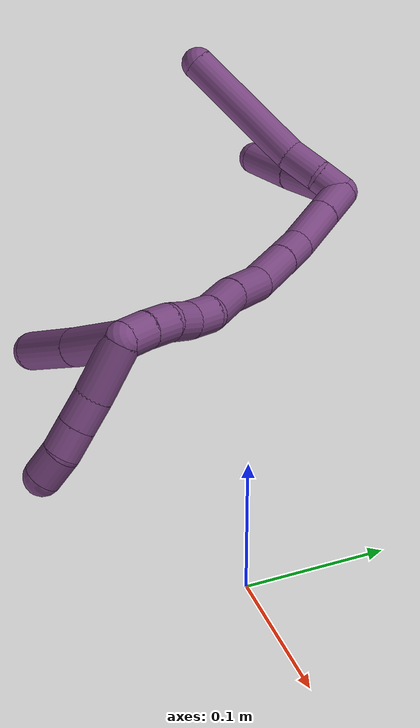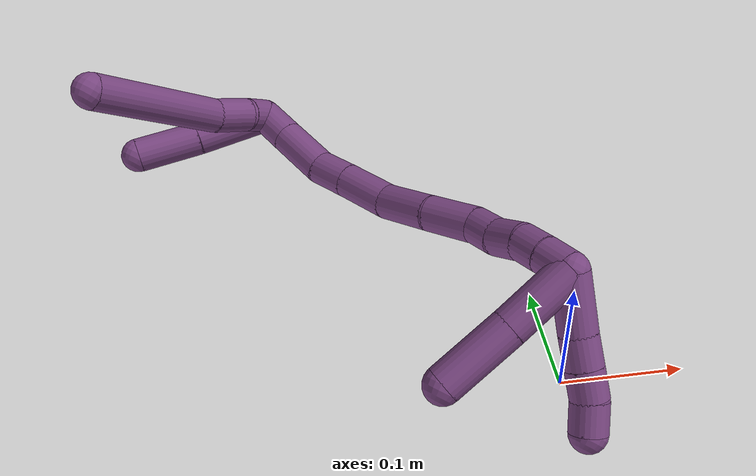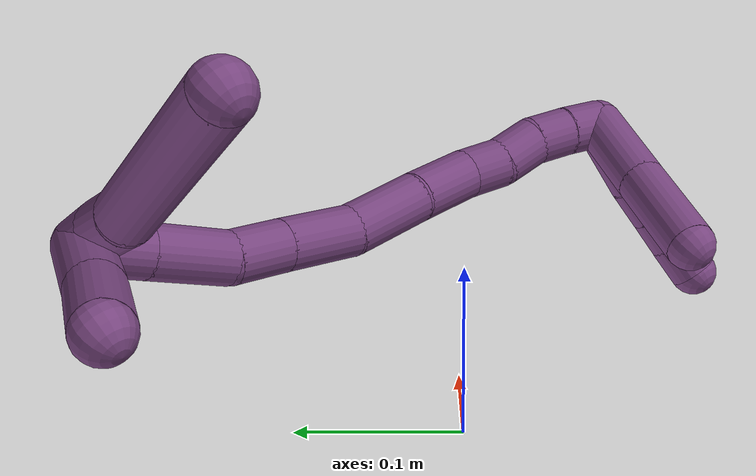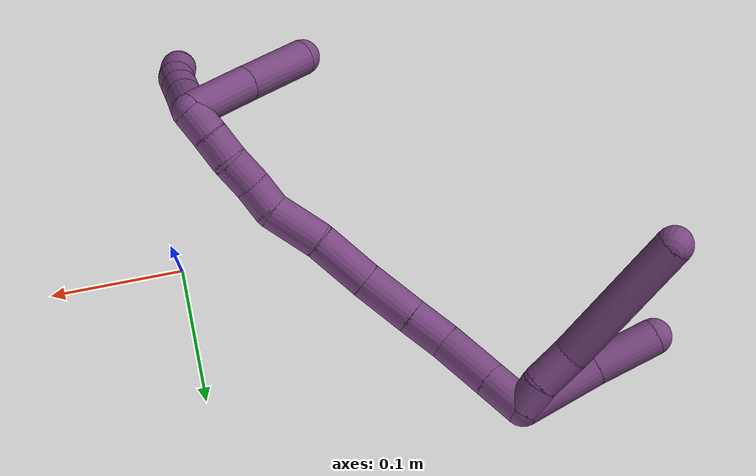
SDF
<sdf version="1.7">
 <world name="default">
  <model name="20">
   <static>0</static>
   <link name="20">
    <collision name="collision-cylinder-e_1_2_8">
     <pose>-0.007786 -0.005163 -0.004439 2.28092 -0.852278 -1.55969</pose>
     <geometry><cylinder><radius>0.0125</radius><length>0.020687</length></cylinder></geometry>
     <surface>
      <friction><ode><mu>1.16</mu><mu2>1.16</mu2><slip1>0</slip1><slip2>0</slip2></ode></friction>
      <contact><ode><kp>1e+06</kp><kd>1</kd><max_vel>0</max_vel><min_depth>0.001</min_depth></ode></contact>
     </surface>
    </collision>
    <visual name="visual-cylinder-e_1_2_8">
     <pose>-0.007786 -0.005163 -0.004439 2.28092 -0.852278 -1.55969</pose>
     <geometry><cylinder><radius>0.0125</radius><length>0.020687</length></cylinder></geometry>
     <material><ambient>0.478431 0.278431 0.509804 1</ambient></material>
    </visual>
    <collision name="collision-cylinder-e_2_8_9">
     <pose>-0.026962 -0.014301 -0.016364 2.65346 -0.931016 -2.2211</pose>
     <geometry><cylinder><radius>0.0125</radius><length>0.028396</length></cylinder></geometry>
     <surface>
      <friction><ode><mu>1.16</mu><mu2>1.16</mu2><slip1>0</slip1><slip2>0</slip2></ode></friction>
      <contact><ode><kp>1e+06</kp><kd>1</kd><max_vel>0</max_vel><min_depth>0.001</min_depth></ode></contact>
     </surface>
    </collision>
    <visual name="visual-cylinder-e_2_8_9">
     <pose>-0.026962 -0.014301 -0.016364 2.65346 -0.931016 -2.2211</pose>
     <geometry><cylinder><radius>0.0125</radius><length>0.028396</length></cylinder></geometry>
     <material><ambient>0.478431 0.278431 0.509804 1</ambient></material>
    </visual>
    <collision name="collision-cylinder-e_3_9_6">
     <pose>-0.08106 -0.038549 -0.041491 2.28689 -1.00916 -1.76243</pose>
     <geometry><cylinder><radius>0.0125</radius><length>0.100918</length></cylinder></geometry>
     <surface>
      <friction><ode><mu>1.16</mu><mu2>1.16</mu2><slip1>0</slip1><slip2>0</slip2></ode></friction>
      <contact><ode><kp>1e+06</kp><kd>1</kd><max_vel>0</max_vel><min_depth>0.001</min_depth></ode></contact>
     </surface>
    </collision>
    <visual name="visual-cylinder-e_3_9_6">
     <pose>-0.08106 -0.038549 -0.041491 2.28689 -1.00916 -1.76243</pose>
     <geometry><cylinder><radius>0.0125</radius><length>0.100918</length></cylinder></geometry>
     <material><ambient>0.478431 0.278431 0.509804 1</ambient></material>
    </visual>
    <collision name="collision-cylinder-e_1_2_10">
     <pose>-0.017469 0.003583 -0.020643 -2.96975 -0.695021 2.67466</pose>
     <geometry><cylinder><radius>0.0125</radius><length>0.054558</length></cylinder></geometry>
     <surface>
      <friction><ode><mu>1.16</mu><mu2>1.16</mu2><slip1>0</slip1><slip2>0</slip2></ode></friction>
      <contact><ode><kp>1e+06</kp><kd>1</kd><max_vel>0</max_vel><min_depth>0.001</min_depth></ode></contact>
     </surface>
    </collision>
    <visual name="visual-cylinder-e_1_2_10">
     <pose>-0.017469 0.003583 -0.020643 -2.96975 -0.695021 2.67466</pose>
     <geometry><cylinder><radius>0.0125</radius><length>0.054558</length></cylinder></geometry>
     <material><ambient>0.478431 0.278431 0.509804 1</ambient></material>
    </visual>
    <collision name="collision-cylinder-e_2_10_5">
     <pose>-0.050211 0.010739 -0.057724 -2.92752 -0.737117 2.5989</pose>
     <geometry><cylinder><radius>0.0125</radius><length>0.045442</length></cylinder></geometry>
     <surface>
      <friction><ode><mu>1.16</mu><mu2>1.16</mu2><slip1>0</slip1><slip2>0</slip2></ode></friction>
      <contact><ode><kp>1e+06</kp><kd>1</kd><max_vel>0</max_vel><min_depth>0.001</min_depth></ode></contact>
     </surface>
    </collision>
    <visual name="visual-cylinder-e_2_10_5">
     <pose>-0.050211 0.010739 -0.057724 -2.92752 -0.737117 2.5989</pose>
     <geometry><cylinder><radius>0.0125</radius><length>0.045442</length></cylinder></geometry>
     <material><ambient>0.478431 0.278431 0.509804 1</ambient></material>
    </visual>
    <collision name="collision-cylinder-e_1_2_11">
     <pose>0.009072 -0.010266 -0.004286 1.96632 0.684105 0.981728</pose>
     <geometry><cylinder><radius>0.0125</radius><length>0.028709</length></cylinder></geometry>
     <surface>
      <friction><ode><mu>1.16</mu><mu2>1.16</mu2><slip1>0</slip1><slip2>0</slip2></ode></friction>
      <contact><ode><kp>1e+06</kp><kd>1</kd><max_vel>0</max_vel><min_depth>0.001</min_depth></ode></contact>
     </surface>
    </collision>
    <visual name="visual-cylinder-e_1_2_11">
     <pose>0.009072 -0.010266 -0.004286 1.96632 0.684105 0.981728</pose>
     <geometry><cylinder><radius>0.0125</radius><length>0.028709</length></cylinder></geometry>
     <material><ambient>0.478431 0.278431 0.509804 1</ambient></material>
    </visual>
    <collision name="collision-cylinder-e_2_11_12">
     <pose>0.030731 -0.034817 -0.014414 1.95896 0.684179 0.975211</pose>
     <geometry><cylinder><radius>0.0125</radius><length>0.039832</length></cylinder></geometry>
     <surface>
      <friction><ode><mu>1.16</mu><mu2>1.16</mu2><slip1>0</slip1><slip2>0</slip2></ode></friction>
      <contact><ode><kp>1e+06</kp><kd>1</kd><max_vel>0</max_vel><min_depth>0.001</min_depth></ode></contact>
     </surface>
    </collision>
    <visual name="visual-cylinder-e_2_11_12">
     <pose>0.030731 -0.034817 -0.014414 1.95896 0.684179 0.975211</pose>
     <geometry><cylinder><radius>0.0125</radius><length>0.039832</length></cylinder></geometry>
     <material><ambient>0.478431 0.278431 0.509804 1</ambient></material>
    </visual>
    <collision name="collision-cylinder-e_3_12_13">
     <pose>0.050726 -0.061072 -0.021305 1.65825 0.552408 0.600092</pose>
     <geometry><cylinder><radius>0.0125</radius><length>0.02823</length></cylinder></geometry>
     <surface>
      <friction><ode><mu>1.16</mu><mu2>1.16</mu2><slip1>0</slip1><slip2>0</slip2></ode></friction>
      <contact><ode><kp>1e+06</kp><kd>1</kd><max_vel>0</max_vel><min_depth>0.001</min_depth></ode></contact>
     </surface>
    </collision>
    <visual name="visual-cylinder-e_3_12_13">
     <pose>0.050726 -0.061072 -0.021305 1.65825 0.552408 0.600092</pose>
     <geometry><cylinder><radius>0.0125</radius><length>0.02823</length></cylinder></geometry>
     <material><ambient>0.478431 0.278431 0.509804 1</ambient></material>
    </visual>
    <collision name="collision-cylinder-e_4_13_14">
     <pose>0.068442 -0.089637 -0.024247 1.68438 0.553023 0.615762</pose>
     <geometry><cylinder><radius>0.0125</radius><length>0.039257</length></cylinder></geometry>
     <surface>
      <friction><ode><mu>1.16</mu><mu2>1.16</mu2><slip1>0</slip1><slip2>0</slip2></ode></friction>
      <contact><ode><kp>1e+06</kp><kd>1</kd><max_vel>0</max_vel><min_depth>0.001</min_depth></ode></contact>
     </surface>
    </collision>
    <visual name="visual-cylinder-e_4_13_14">
     <pose>0.068442 -0.089637 -0.024247 1.68438 0.553023 0.615762</pose>
     <geometry><cylinder><radius>0.0125</radius><length>0.039257</length></cylinder></geometry>
     <material><ambient>0.478431 0.278431 0.509804 1</ambient></material>
    </visual>
    <collision name="collision-cylinder-e_5_14_15">
     <pose>0.086049 -0.125535 -0.025379 1.53137 0.361118 0.34744</pose>
     <geometry><cylinder><radius>0.0125</radius><length>0.041301</length></cylinder></geometry>
     <surface>
      <friction><ode><mu>1.16</mu><mu2>1.16</mu2><slip1>0</slip1><slip2>0</slip2></ode></friction>
      <contact><ode><kp>1e+06</kp><kd>1</kd><max_vel>0</max_vel><min_depth>0.001</min_depth></ode></contact>
     </surface>
    </collision>
    <visual name="visual-cylinder-e_5_14_15">
     <pose>0.086049 -0.125535 -0.025379 1.53137 0.361118 0.34744</pose>
     <geometry><cylinder><radius>0.0125</radius><length>0.041301</length></cylinder></geometry>
     <material><ambient>0.478431 0.278431 0.509804 1</ambient></material>
    </visual>
    <collision name="collision-cylinder-e_6_15_16">
     <pose>0.102159 -0.161006 -0.023066 1.47512 0.497199 0.45338</pose>
     <geometry><cylinder><radius>0.0125</radius><length>0.036957</length></cylinder></geometry>
     <surface>
      <friction><ode><mu>1.16</mu><mu2>1.16</mu2><slip1>0</slip1><slip2>0</slip2></ode></friction>
      <contact><ode><kp>1e+06</kp><kd>1</kd><max_vel>0</max_vel><min_depth>0.001</min_depth></ode></contact>
     </surface>
    </collision>
    <visual name="visual-cylinder-e_6_15_16">
     <pose>0.102159 -0.161006 -0.023066 1.47512 0.497199 0.45338</pose>
     <geometry><cylinder><radius>0.0125</radius><length>0.036957</length></cylinder></geometry>
     <material><ambient>0.478431 0.278431 0.509804 1</ambient></material>
    </visual>
    <collision name="collision-cylinder-e_7_16_17">
     <pose>0.113895 -0.187359 -0.023301 1.74449 0.275406 0.327076</pose>
     <geometry><cylinder><radius>0.0125</radius><length>0.021493</length></cylinder></geometry>
     <surface>
      <friction><ode><mu>1.16</mu><mu2>1.16</mu2><slip1>0</slip1><slip2>0</slip2></ode></friction>
      <contact><ode><kp>1e+06</kp><kd>1</kd><max_vel>0</max_vel><min_depth>0.001</min_depth></ode></contact>
     </surface>
    </collision>
    <visual name="visual-cylinder-e_7_16_17">
     <pose>0.113895 -0.187359 -0.023301 1.74449 0.275406 0.327076</pose>
     <geometry><cylinder><radius>0.0125</radius><length>0.021493</length></cylinder></geometry>
     <material><ambient>0.478431 0.278431 0.509804 1</ambient></material>
    </visual>
    <collision name="collision-cylinder-e_8_17_18">
     <pose>0.118863 -0.208669 -0.024543 1.52177 0.181651 0.173002</pose>
     <geometry><cylinder><radius>0.0125</radius><length>0.022649</length></cylinder></geometry>
     <surface>
      <friction><ode><mu>1.16</mu><mu2>1.16</mu2><slip1>0</slip1><slip2>0</slip2></ode></friction>
      <contact><ode><kp>1e+06</kp><kd>1</kd><max_vel>0</max_vel><min_depth>0.001</min_depth></ode></contact>
     </surface>
    </collision>
    <visual name="visual-cylinder-e_8_17_18">
     <pose>0.118863 -0.208669 -0.024543 1.52177 0.181651 0.173002</pose>
     <geometry><cylinder><radius>0.0125</radius><length>0.022649</length></cylinder></geometry>
     <material><ambient>0.478431 0.278431 0.509804 1</ambient></material>
    </visual>
    <collision name="collision-cylinder-e_9_18_19">
     <pose>0.123786 -0.229432 -0.025897 1.76547 0.284891 0.345433</pose>
     <geometry><cylinder><radius>0.0125</radius><length>0.020473</length></cylinder></geometry>
     <surface>
      <friction><ode><mu>1.16</mu><mu2>1.16</mu2><slip1>0</slip1><slip2>0</slip2></ode></friction>
      <contact><ode><kp>1e+06</kp><kd>1</kd><max_vel>0</max_vel><min_depth>0.001</min_depth></ode></contact>
     </surface>
    </collision>
    <visual name="visual-cylinder-e_9_18_19">
     <pose>0.123786 -0.229432 -0.025897 1.76547 0.284891 0.345433</pose>
     <geometry><cylinder><radius>0.0125</radius><length>0.020473</length></cylinder></geometry>
     <material><ambient>0.478431 0.278431 0.509804 1</ambient></material>
    </visual>
    <collision name="collision-cylinder-e_10_19_1">
     <pose>0.130235 -0.248743 -0.030029 1.79753 0.34548 0.431793</pose>
     <geometry><cylinder><radius>0.0125</radius><length>0.021099</length></cylinder></geometry>
     <surface>
      <friction><ode><mu>1.16</mu><mu2>1.16</mu2><slip1>0</slip1><slip2>0</slip2></ode></friction>
      <contact><ode><kp>1e+06</kp><kd>1</kd><max_vel>0</max_vel><min_depth>0.001</min_depth></ode></contact>
     </surface>
    </collision>
    <visual name="visual-cylinder-e_10_19_1">
     <pose>0.130235 -0.248743 -0.030029 1.79753 0.34548 0.431793</pose>
     <geometry><cylinder><radius>0.0125</radius><length>0.021099</length></cylinder></geometry>
     <material><ambient>0.478431 0.278431 0.509804 1</ambient></material>
    </visual>
    <collision name="collision-cylinder-e_1_1_20">
     <pose>0.127047 -0.252543 -0.055145 -2.8904 -0.278723 1.67583</pose>
     <geometry><cylinder><radius>0.0125</radius><length>0.049149</length></cylinder></geometry>
     <surface>
      <friction><ode><mu>1.16</mu><mu2>1.16</mu2><slip1>0</slip1><slip2>0</slip2></ode></friction>
      <contact><ode><kp>1e+06</kp><kd>1</kd><max_vel>0</max_vel><min_depth>0.001</min_depth></ode></contact>
     </surface>
    </collision>
    <visual name="visual-cylinder-e_1_1_20">
     <pose>0.127047 -0.252543 -0.055145 -2.8904 -0.278723 1.67583</pose>
     <geometry><cylinder><radius>0.0125</radius><length>0.049149</length></cylinder></geometry>
     <material><ambient>0.478431 0.278431 0.509804 1</ambient></material>
    </visual>
    <collision name="collision-cylinder-e_2_20_4">
     <pose>0.112554 -0.240478 -0.101446 -2.88306 -0.308989 1.75052</pose>
     <geometry><cylinder><radius>0.0125</radius><length>0.050851</length></cylinder></geometry>
     <surface>
      <friction><ode><mu>1.16</mu><mu2>1.16</mu2><slip1>0</slip1><slip2>0</slip2></ode></friction>
      <contact><ode><kp>1e+06</kp><kd>1</kd><max_vel>0</max_vel><min_depth>0.001</min_depth></ode></contact>
     </surface>
    </collision>
    <visual name="visual-cylinder-e_2_20_4">
     <pose>0.112554 -0.240478 -0.101446 -2.88306 -0.308989 1.75052</pose>
     <geometry><cylinder><radius>0.0125</radius><length>0.050851</length></cylinder></geometry>
     <material><ambient>0.478431 0.278431 0.509804 1</ambient></material>
    </visual>
    <collision name="collision-cylinder-e_1_1_21">
     <pose>0.146346 -0.258764 -0.047053 3.11797 0.70298 3.0772</pose>
     <geometry><cylinder><radius>0.0125</radius><length>0.038789</length></cylinder></geometry>
     <surface>
      <friction><ode><mu>1.16</mu><mu2>1.16</mu2><slip1>0</slip1><slip2>0</slip2></ode></friction>
      <contact><ode><kp>1e+06</kp><kd>1</kd><max_vel>0</max_vel><min_depth>0.001</min_depth></ode></contact>
     </surface>
    </collision>
    <visual name="visual-cylinder-e_1_1_21">
     <pose>0.146346 -0.258764 -0.047053 3.11797 0.70298 3.0772</pose>
     <geometry><cylinder><radius>0.0125</radius><length>0.038789</length></cylinder></geometry>
     <material><ambient>0.478431 0.278431 0.509804 1</ambient></material>
    </visual>
    <collision name="collision-cylinder-e_2_21_22">
     <pose>0.165543 -0.26005 -0.06974 3.02353 0.697201 2.8192</pose>
     <geometry><cylinder><radius>0.0125</radius><length>0.020742</length></cylinder></geometry>
     <surface>
      <friction><ode><mu>1.16</mu><mu2>1.16</mu2><slip1>0</slip1><slip2>0</slip2></ode></friction>
      <contact><ode><kp>1e+06</kp><kd>1</kd><max_vel>0</max_vel><min_depth>0.001</min_depth></ode></contact>
     </surface>
    </collision>
    <visual name="visual-cylinder-e_2_21_22">
     <pose>0.165543 -0.26005 -0.06974 3.02353 0.697201 2.8192</pose>
     <geometry><cylinder><radius>0.0125</radius><length>0.020742</length></cylinder></geometry>
     <material><ambient>0.478431 0.278431 0.509804 1</ambient></material>
    </visual>
    <collision name="collision-cylinder-e_3_22_23">
     <pose>0.178667 -0.261837 -0.085275 3.03075 0.699258 2.83959</pose>
     <geometry><cylinder><radius>0.0125</radius><length>0.020086</length></cylinder></geometry>
     <surface>
      <friction><ode><mu>1.16</mu><mu2>1.16</mu2><slip1>0</slip1><slip2>0</slip2></ode></friction>
      <contact><ode><kp>1e+06</kp><kd>1</kd><max_vel>0</max_vel><min_depth>0.001</min_depth></ode></contact>
     </surface>
    </collision>
    <visual name="visual-cylinder-e_3_22_23">
     <pose>0.178667 -0.261837 -0.085275 3.03075 0.699258 2.83959</pose>
     <geometry><cylinder><radius>0.0125</radius><length>0.020086</length></cylinder></geometry>
     <material><ambient>0.478431 0.278431 0.509804 1</ambient></material>
    </visual>
    <collision name="collision-cylinder-e_4_23_3">
     <pose>0.189909 -0.26287 -0.101914 3.12133 0.48798 3.06023</pose>
     <geometry><cylinder><radius>0.0125</radius><length>0.020383</length></cylinder></geometry>
     <surface>
      <friction><ode><mu>1.16</mu><mu2>1.16</mu2><slip1>0</slip1><slip2>0</slip2></ode></friction>
      <contact><ode><kp>1e+06</kp><kd>1</kd><max_vel>0</max_vel><min_depth>0.001</min_depth></ode></contact>
     </surface>
    </collision>
    <visual name="visual-cylinder-e_4_23_3">
     <pose>0.189909 -0.26287 -0.101914 3.12133 0.48798 3.06023</pose>
     <geometry><cylinder><radius>0.0125</radius><length>0.020383</length></cylinder></geometry>
     <material><ambient>0.478431 0.278431 0.509804 1</ambient></material>
    </visual>
    <collision name="collision-sphere-3">
     <pose>0.194687 -0.263052 -0.110914 0 -0 0</pose>
     <geometry><sphere><radius>0.0125</radius></sphere></geometry>
     <surface>
      <friction><ode><mu>1.16</mu><mu2>1.16</mu2><slip1>0</slip1><slip2>0</slip2></ode></friction>
      <contact><ode><kp>1e+06</kp><kd>1</kd><max_vel>0</max_vel><min_depth>0.001</min_depth></ode></contact>
     </surface>
    </collision>
    <visual name="visual-sphere-3">
     <pose>0.194687 -0.263052 -0.110914 0 -0 0</pose>
     <geometry><sphere><radius>0.0125</radius></sphere></geometry>
     <material><ambient>0.478431 0.278431 0.509804 1</ambient></material>
    </visual>
    <collision name="collision-sphere-23">
     <pose>0.185131 -0.262687 -0.092914 0 -0 0</pose>
     <geometry><sphere><radius>0.0125</radius></sphere></geometry>
     <surface>
      <friction><ode><mu>1.16</mu><mu2>1.16</mu2><slip1>0</slip1><slip2>0</slip2></ode></friction>
      <contact><ode><kp>1e+06</kp><kd>1</kd><max_vel>0</max_vel><min_depth>0.001</min_depth></ode></contact>
     </surface>
    </collision>
    <visual name="visual-sphere-23">
     <pose>0.185131 -0.262687 -0.092914 0 -0 0</pose>
     <geometry><sphere><radius>0.0125</radius></sphere></geometry>
     <material><ambient>0.478431 0.278431 0.509804 1</ambient></material>
    </visual>
    <collision name="collision-sphere-22">
     <pose>0.172202 -0.260987 -0.077636 0 -0 0</pose>
     <geometry><sphere><radius>0.0125</radius></sphere></geometry>
     <surface>
      <friction><ode><mu>1.16</mu><mu2>1.16</mu2><slip1>0</slip1><slip2>0</slip2></ode></friction>
      <contact><ode><kp>1e+06</kp><kd>1</kd><max_vel>0</max_vel><min_depth>0.001</min_depth></ode></contact>
     </surface>
    </collision>
    <visual name="visual-sphere-22">
     <pose>0.172202 -0.260987 -0.077636 0 -0 0</pose>
     <geometry><sphere><radius>0.0125</radius></sphere></geometry>
     <material><ambient>0.478431 0.278431 0.509804 1</ambient></material>
    </visual>
    <collision name="collision-sphere-21">
     <pose>0.158885 -0.259114 -0.061845 0 -0 0</pose>
     <geometry><sphere><radius>0.0125</radius></sphere></geometry>
     <surface>
      <friction><ode><mu>1.16</mu><mu2>1.16</mu2><slip1>0</slip1><slip2>0</slip2></ode></friction>
      <contact><ode><kp>1e+06</kp><kd>1</kd><max_vel>0</max_vel><min_depth>0.001</min_depth></ode></contact>
     </surface>
    </collision>
    <visual name="visual-sphere-21">
     <pose>0.158885 -0.259114 -0.061845 0 -0 0</pose>
     <geometry><sphere><radius>0.0125</radius></sphere></geometry>
     <material><ambient>0.478431 0.278431 0.509804 1</ambient></material>
    </visual>
    <collision name="collision-sphere-4">
     <pose>0.104822 -0.234285 -0.124862 0 -0 0</pose>
     <geometry><sphere><radius>0.0125</radius></sphere></geometry>
     <surface>
      <friction><ode><mu>1.16</mu><mu2>1.16</mu2><slip1>0</slip1><slip2>0</slip2></ode></friction>
      <contact><ode><kp>1e+06</kp><kd>1</kd><max_vel>0</max_vel><min_depth>0.001</min_depth></ode></contact>
     </surface>
    </collision>
    <visual name="visual-sphere-4">
     <pose>0.104822 -0.234285 -0.124862 0 -0 0</pose>
     <geometry><sphere><radius>0.0125</radius></sphere></geometry>
     <material><ambient>0.478431 0.278431 0.509804 1</ambient></material>
    </visual>
    <collision name="collision-sphere-20">
     <pose>0.120286 -0.24667 -0.078029 0 -0 0</pose>
     <geometry><sphere><radius>0.0125</radius></sphere></geometry>
     <surface>
      <friction><ode><mu>1.16</mu><mu2>1.16</mu2><slip1>0</slip1><slip2>0</slip2></ode></friction>
      <contact><ode><kp>1e+06</kp><kd>1</kd><max_vel>0</max_vel><min_depth>0.001</min_depth></ode></contact>
     </surface>
    </collision>
    <visual name="visual-sphere-20">
     <pose>0.120286 -0.24667 -0.078029 0 -0 0</pose>
     <geometry><sphere><radius>0.0125</radius></sphere></geometry>
     <material><ambient>0.478431 0.278431 0.509804 1</ambient></material>
    </visual>
    <collision name="collision-sphere-5">
     <pose>-0.065483 0.014313 -0.074163 0 -0 0</pose>
     <geometry><sphere><radius>0.0125</radius></sphere></geometry>
     <surface>
      <friction><ode><mu>1.16</mu><mu2>1.16</mu2><slip1>0</slip1><slip2>0</slip2></ode></friction>
      <contact><ode><kp>1e+06</kp><kd>1</kd><max_vel>0</max_vel><min_depth>0.001</min_depth></ode></contact>
     </surface>
    </collision>
    <visual name="visual-sphere-5">
     <pose>-0.065483 0.014313 -0.074163 0 -0 0</pose>
     <geometry><sphere><radius>0.0125</radius></sphere></geometry>
     <material><ambient>0.478431 0.278431 0.509804 1</ambient></material>
    </visual>
    <collision name="collision-sphere-10">
     <pose>-0.034939 0.007165 -0.041285 0 -0 0</pose>
     <geometry><sphere><radius>0.0125</radius></sphere></geometry>
     <surface>
      <friction><ode><mu>1.16</mu><mu2>1.16</mu2><slip1>0</slip1><slip2>0</slip2></ode></friction>
      <contact><ode><kp>1e+06</kp><kd>1</kd><max_vel>0</max_vel><min_depth>0.001</min_depth></ode></contact>
     </surface>
    </collision>
    <visual name="visual-sphere-10">
     <pose>-0.034939 0.007165 -0.041285 0 -0 0</pose>
     <geometry><sphere><radius>0.0125</radius></sphere></geometry>
     <material><ambient>0.478431 0.278431 0.509804 1</ambient></material>
    </visual>
    <collision name="collision-sphere-6">
     <pose>-0.123767 -0.058821 -0.059132 0 -0 0</pose>
     <geometry><sphere><radius>0.0125</radius></sphere></geometry>
     <surface>
      <friction><ode><mu>1.16</mu><mu2>1.16</mu2><slip1>0</slip1><slip2>0</slip2></ode></friction>
      <contact><ode><kp>1e+06</kp><kd>1</kd><max_vel>0</max_vel><min_depth>0.001</min_depth></ode></contact>
     </surface>
    </collision>
    <visual name="visual-sphere-6">
     <pose>-0.123767 -0.058821 -0.059132 0 -0 0</pose>
     <geometry><sphere><radius>0.0125</radius></sphere></geometry>
     <material><ambient>0.478431 0.278431 0.509804 1</ambient></material>
    </visual>
    <collision name="collision-sphere-9">
     <pose>-0.038352 -0.018276 -0.023851 0 -0 0</pose>
     <geometry><sphere><radius>0.0125</radius></sphere></geometry>
     <surface>
      <friction><ode><mu>1.16</mu><mu2>1.16</mu2><slip1>0</slip1><slip2>0</slip2></ode></friction>
      <contact><ode><kp>1e+06</kp><kd>1</kd><max_vel>0</max_vel><min_depth>0.001</min_depth></ode></contact>
     </surface>
    </collision>
    <visual name="visual-sphere-9">
     <pose>-0.038352 -0.018276 -0.023851 0 -0 0</pose>
     <geometry><sphere><radius>0.0125</radius></sphere></geometry>
     <material><ambient>0.478431 0.278431 0.509804 1</ambient></material>
    </visual>
    <collision name="collision-sphere-2">
     <geometry><sphere><radius>0.0125</radius></sphere></geometry>
     <surface>
      <friction><ode><mu>1.16</mu><mu2>1.16</mu2><slip1>0</slip1><slip2>0</slip2></ode></friction>
      <contact><ode><kp>1e+06</kp><kd>1</kd><max_vel>0</max_vel><min_depth>0.001</min_depth></ode></contact>
     </surface>
    </collision>
    <visual name="visual-sphere-2">
     <geometry><sphere><radius>0.0125</radius></sphere></geometry>
     <material><ambient>0.478431 0.278431 0.509804 1</ambient></material>
    </visual>
    <collision name="collision-sphere-19">
     <pose>0.126663 -0.239071 -0.027798 0 -0 0</pose>
     <geometry><sphere><radius>0.0125</radius></sphere></geometry>
     <surface>
      <friction><ode><mu>1.16</mu><mu2>1.16</mu2><slip1>0</slip1><slip2>0</slip2></ode></friction>
      <contact><ode><kp>1e+06</kp><kd>1</kd><max_vel>0</max_vel><min_depth>0.001</min_depth></ode></contact>
     </surface>
    </collision>
    <visual name="visual-sphere-19">
     <pose>0.126663 -0.239071 -0.027798 0 -0 0</pose>
     <geometry><sphere><radius>0.0125</radius></sphere></geometry>
     <material><ambient>0.478431 0.278431 0.509804 1</ambient></material>
    </visual>
    <collision name="collision-sphere-8">
     <pose>-0.015573 -0.010326 -0.008878 0 -0 0</pose>
     <geometry><sphere><radius>0.0125</radius></sphere></geometry>
     <surface>
      <friction><ode><mu>1.16</mu><mu2>1.16</mu2><slip1>0</slip1><slip2>0</slip2></ode></friction>
      <contact><ode><kp>1e+06</kp><kd>1</kd><max_vel>0</max_vel><min_depth>0.001</min_depth></ode></contact>
     </surface>
    </collision>
    <visual name="visual-sphere-8">
     <pose>-0.015573 -0.010326 -0.008878 0 -0 0</pose>
     <geometry><sphere><radius>0.0125</radius></sphere></geometry>
     <material><ambient>0.478431 0.278431 0.509804 1</ambient></material>
    </visual>
    <collision name="collision-sphere-11">
     <pose>0.018143 -0.020531 -0.008572 0 -0 0</pose>
     <geometry><sphere><radius>0.0125</radius></sphere></geometry>
     <surface>
      <friction><ode><mu>1.16</mu><mu2>1.16</mu2><slip1>0</slip1><slip2>0</slip2></ode></friction>
      <contact><ode><kp>1e+06</kp><kd>1</kd><max_vel>0</max_vel><min_depth>0.001</min_depth></ode></contact>
     </surface>
    </collision>
    <visual name="visual-sphere-11">
     <pose>0.018143 -0.020531 -0.008572 0 -0 0</pose>
     <geometry><sphere><radius>0.0125</radius></sphere></geometry>
     <material><ambient>0.478431 0.278431 0.509804 1</ambient></material>
    </visual>
    <collision name="collision-sphere-12">
     <pose>0.043319 -0.049102 -0.020255 0 -0 0</pose>
     <geometry><sphere><radius>0.0125</radius></sphere></geometry>
     <surface>
      <friction><ode><mu>1.16</mu><mu2>1.16</mu2><slip1>0</slip1><slip2>0</slip2></ode></friction>
      <contact><ode><kp>1e+06</kp><kd>1</kd><max_vel>0</max_vel><min_depth>0.001</min_depth></ode></contact>
     </surface>
    </collision>
    <visual name="visual-sphere-12">
     <pose>0.043319 -0.049102 -0.020255 0 -0 0</pose>
     <geometry><sphere><radius>0.0125</radius></sphere></geometry>
     <material><ambient>0.478431 0.278431 0.509804 1</ambient></material>
    </visual>
    <collision name="collision-sphere-13">
     <pose>0.058132 -0.073042 -0.022354 0 -0 0</pose>
     <geometry><sphere><radius>0.0125</radius></sphere></geometry>
     <surface>
      <friction><ode><mu>1.16</mu><mu2>1.16</mu2><slip1>0</slip1><slip2>0</slip2></ode></friction>
      <contact><ode><kp>1e+06</kp><kd>1</kd><max_vel>0</max_vel><min_depth>0.001</min_depth></ode></contact>
     </surface>
    </collision>
    <visual name="visual-sphere-13">
     <pose>0.058132 -0.073042 -0.022354 0 -0 0</pose>
     <geometry><sphere><radius>0.0125</radius></sphere></geometry>
     <material><ambient>0.478431 0.278431 0.509804 1</ambient></material>
    </visual>
    <collision name="collision-sphere-14">
     <pose>0.078752 -0.106232 -0.02614 0 -0 0</pose>
     <geometry><sphere><radius>0.0125</radius></sphere></geometry>
     <surface>
      <friction><ode><mu>1.16</mu><mu2>1.16</mu2><slip1>0</slip1><slip2>0</slip2></ode></friction>
      <contact><ode><kp>1e+06</kp><kd>1</kd><max_vel>0</max_vel><min_depth>0.001</min_depth></ode></contact>
     </surface>
    </collision>
    <visual name="visual-sphere-14">
     <pose>0.078752 -0.106232 -0.02614 0 -0 0</pose>
     <geometry><sphere><radius>0.0125</radius></sphere></geometry>
     <material><ambient>0.478431 0.278431 0.509804 1</ambient></material>
    </visual>
    <collision name="collision-sphere-15">
     <pose>0.093345 -0.144839 -0.024617 0 -0 0</pose>
     <geometry><sphere><radius>0.0125</radius></sphere></geometry>
     <surface>
      <friction><ode><mu>1.16</mu><mu2>1.16</mu2><slip1>0</slip1><slip2>0</slip2></ode></friction>
      <contact><ode><kp>1e+06</kp><kd>1</kd><max_vel>0</max_vel><min_depth>0.001</min_depth></ode></contact>
     </surface>
    </collision>
    <visual name="visual-sphere-15">
     <pose>0.093345 -0.144839 -0.024617 0 -0 0</pose>
     <geometry><sphere><radius>0.0125</radius></sphere></geometry>
     <material><ambient>0.478431 0.278431 0.509804 1</ambient></material>
    </visual>
    <collision name="collision-sphere-16">
     <pose>0.110972 -0.177173 -0.021514 0 -0 0</pose>
     <geometry><sphere><radius>0.0125</radius></sphere></geometry>
     <surface>
      <friction><ode><mu>1.16</mu><mu2>1.16</mu2><slip1>0</slip1><slip2>0</slip2></ode></friction>
      <contact><ode><kp>1e+06</kp><kd>1</kd><max_vel>0</max_vel><min_depth>0.001</min_depth></ode></contact>
     </surface>
    </collision>
    <visual name="visual-sphere-16">
     <pose>0.110972 -0.177173 -0.021514 0 -0 0</pose>
     <geometry><sphere><radius>0.0125</radius></sphere></geometry>
     <material><ambient>0.478431 0.278431 0.509804 1</ambient></material>
    </visual>
    <collision name="collision-sphere-17">
     <pose>0.116817 -0.197545 -0.025089 0 -0 0</pose>
     <geometry><sphere><radius>0.0125</radius></sphere></geometry>
     <surface>
      <friction><ode><mu>1.16</mu><mu2>1.16</mu2><slip1>0</slip1><slip2>0</slip2></ode></friction>
      <contact><ode><kp>1e+06</kp><kd>1</kd><max_vel>0</max_vel><min_depth>0.001</min_depth></ode></contact>
     </surface>
    </collision>
    <visual name="visual-sphere-17">
     <pose>0.116817 -0.197545 -0.025089 0 -0 0</pose>
     <geometry><sphere><radius>0.0125</radius></sphere></geometry>
     <material><ambient>0.478431 0.278431 0.509804 1</ambient></material>
    </visual>
    <collision name="collision-sphere-18">
     <pose>0.120909 -0.219794 -0.023997 0 -0 0</pose>
     <geometry><sphere><radius>0.0125</radius></sphere></geometry>
     <surface>
      <friction><ode><mu>1.16</mu><mu2>1.16</mu2><slip1>0</slip1><slip2>0</slip2></ode></friction>
      <contact><ode><kp>1e+06</kp><kd>1</kd><max_vel>0</max_vel><min_depth>0.001</min_depth></ode></contact>
     </surface>
    </collision>
    <visual name="visual-sphere-18">
     <pose>0.120909 -0.219794 -0.023997 0 -0 0</pose>
     <geometry><sphere><radius>0.0125</radius></sphere></geometry>
     <material><ambient>0.478431 0.278431 0.509804 1</ambient></material>
    </visual>
    <collision name="collision-sphere-1">
     <pose>0.133808 -0.258415 -0.03226 0 -0 0</pose>
     <geometry><sphere><radius>0.0125</radius></sphere></geometry>
     <surface>
      <friction><ode><mu>1.16</mu><mu2>1.16</mu2><slip1>0</slip1><slip2>0</slip2></ode></friction>
      <contact><ode><kp>1e+06</kp><kd>1</kd><max_vel>0</max_vel><min_depth>0.001</min_depth></ode></contact>
     </surface>
    </collision>
    <visual name="visual-sphere-1">
     <pose>0.133808 -0.258415 -0.03226 0 -0 0</pose>
     <geometry><sphere><radius>0.0125</radius></sphere></geometry>
     <material><ambient>0.478431 0.278431 0.509804 1</ambient></material>
    </visual>
    <inertial>
     <pose>0.052734 -0.121556 -0.039727 0 -0 0</pose>
     <mass>0.75</mass>
     <inertia>
      <ixx>-1.1e-05</ixx>
      <ixy>0</ixy>
      <ixz>0</ixz>
      <iyy>9.7e-05</iyy>
      <iyz>0</iyz>
      <izz>0.000114</izz>
     </inertia>
    </inertial>
   </link>
   <pose>-0.210051 0.162937 0.165159 -0.7118 0.70887 -0.083138</pose>
  </model>
 </world>
</sdf>
